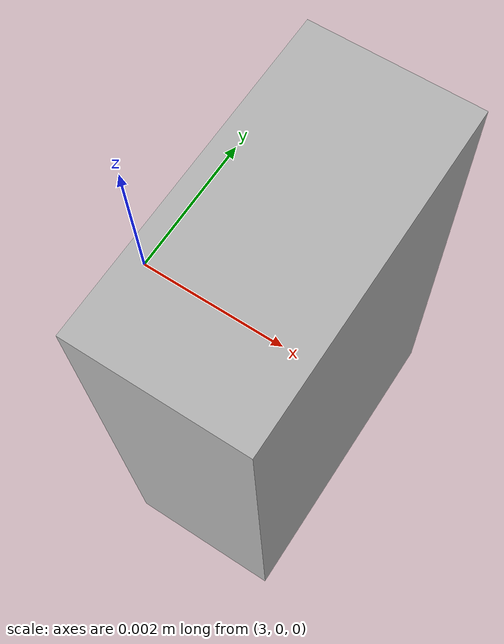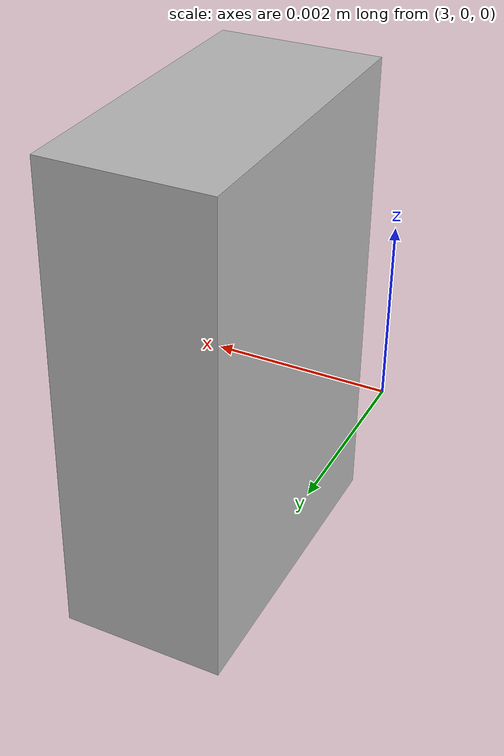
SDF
<sdf version="1.12"><model name="external"><pose>1 0 0 0 0 0</pose><link name="base"><pose>2 0 0 0 0 0</pose><visual name="box"><pose>0.002 0 0 0 0 0</pose><geometry><box><size>0.002 0.004 0.006</size></box></geometry></visual></link></model></sdf>
